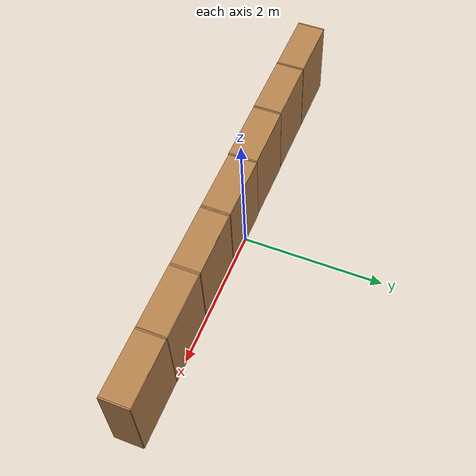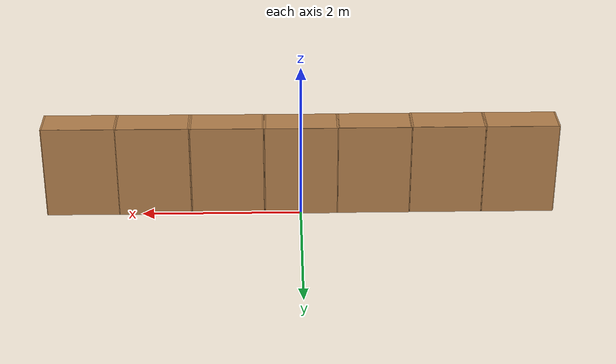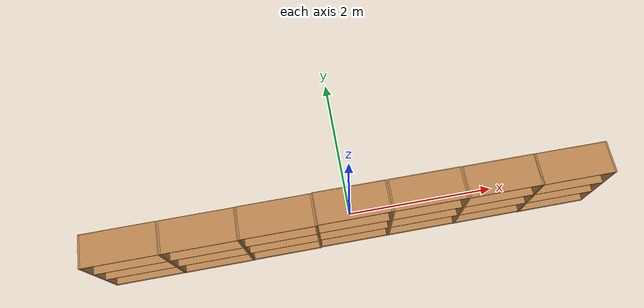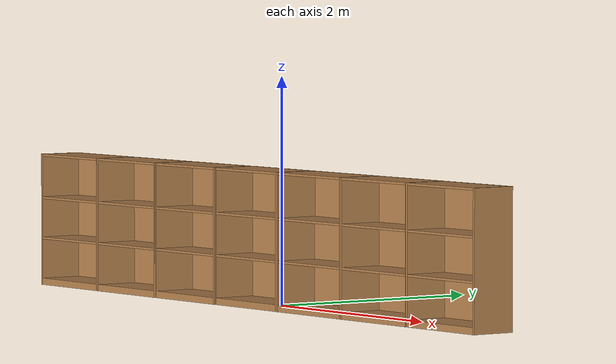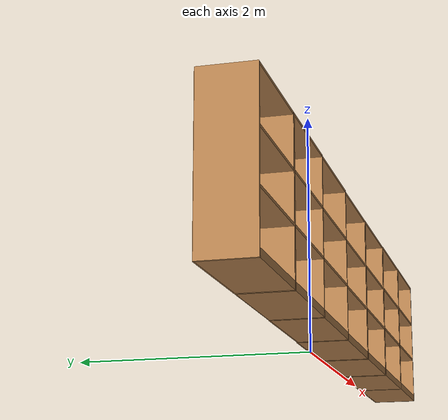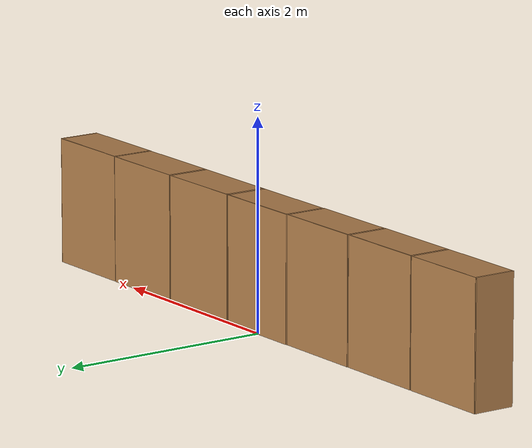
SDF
<?xml version='1.0'?>
<sdf version='1.7'>
  <model name='bookshelfs'>
    <model name='bookshelf_0'>
      <static>1</static>
      <link name='link'>
        <inertial>
          <mass>1</mass>
        </inertial>
        <collision name='back'>
          <pose>0 0.005 0.6 0 -0 0</pose>
          <geometry>
            <box>
              <size>0.9 0.01 1.2</size>
            </box>
          </geometry>
        </collision>
        <visual name='visual1'>
          <pose>0 0.005 0.6 0 -0 0</pose>
          <geometry>
            <box>
              <size>0.9 0.01 1.2</size>
            </box>
          </geometry>
          <material>
            <script>
              <uri>file://media/materials/scripts/gazebo.material</uri>
              <name>Gazebo/Wood</name>
            </script>
          </material>
        </visual>
        <collision name='left_side'>
          <pose>0.45 -0.195 0.6 0 -0 0</pose>
          <geometry>
            <box>
              <size>0.02 0.4 1.2</size>
            </box>
          </geometry>
        </collision>
        <visual name='visual2'>
          <pose>0.45 -0.195 0.6 0 -0 0</pose>
          <geometry>
            <box>
              <size>0.02 0.4 1.2</size>
            </box>
          </geometry>
          <material>
            <script>
              <uri>file://media/materials/scripts/gazebo.material</uri>
              <name>Gazebo/Wood</name>
            </script>
          </material>
        </visual>
        <collision name='right_side'>
          <pose>-0.45 -0.195 0.6 0 -0 0</pose>
          <geometry>
            <box>
              <size>0.02 0.4 1.2</size>
            </box>
          </geometry>
        </collision>
        <visual name='visual3'>
          <pose>-0.45 -0.195 0.6 0 -0 0</pose>
          <geometry>
            <box>
              <size>0.02 0.4 1.2</size>
            </box>
          </geometry>
          <material>
            <script>
              <uri>file://media/materials/scripts/gazebo.material</uri>
              <name>Gazebo/Wood</name>
            </script>
          </material>
        </visual>
        <collision name='bottom'>
          <pose>0 -0.195 0.03 0 -0 0</pose>
          <geometry>
            <box>
              <size>0.88 0.4 0.06</size>
            </box>
          </geometry>
        </collision>
        <visual name='visual4'>
          <pose>0 -0.195 0.03 0 -0 0</pose>
          <geometry>
            <box>
              <size>0.88 0.4 0.06</size>
            </box>
          </geometry>
          <material>
            <script>
              <uri>file://media/materials/scripts/gazebo.material</uri>
              <name>Gazebo/Wood</name>
            </script>
          </material>
        </visual>
        <collision name='top'>
          <pose>0 -0.195 1.19 0 -0 0</pose>
          <geometry>
            <box>
              <size>0.88 0.4 0.02</size>
            </box>
          </geometry>
        </collision>
        <visual name='visual5'>
          <pose>0 -0.195 1.19 0 -0 0</pose>
          <geometry>
            <box>
              <size>0.88 0.4 0.02</size>
            </box>
          </geometry>
          <material>
            <script>
              <uri>file://media/materials/scripts/gazebo.material</uri>
              <name>Gazebo/Wood</name>
            </script>
          </material>
        </visual>
        <collision name='low_shelf'>
          <pose>0 -0.195 0.43 0 -0 0</pose>
          <geometry>
            <box>
              <size>0.88 0.4 0.02</size>
            </box>
          </geometry>
        </collision>
        <visual name='visual6'>
          <pose>0 -0.195 0.43 0 -0 0</pose>
          <geometry>
            <box>
              <size>0.88 0.4 0.02</size>
            </box>
          </geometry>
          <material>
            <script>
              <uri>file://media/materials/scripts/gazebo.material</uri>
              <name>Gazebo/Wood</name>
            </script>
          </material>
        </visual>
        <collision name='high_shelf'>
          <pose>0 -0.195 0.8 0 -0 0</pose>
          <geometry>
            <box>
              <size>0.88 0.4 0.02</size>
            </box>
          </geometry>
        </collision>
        <visual name='visual7'>
          <pose>0 -0.195 0.8 0 -0 0</pose>
          <geometry>
            <box>
              <size>0.88 0.4 0.02</size>
            </box>
          </geometry>
          <material>
            <script>
              <uri>file://media/materials/scripts/gazebo.material</uri>
              <name>Gazebo/Wood</name>
            </script>
          </material>
        </visual>
      </link>
      <pose>-0.005007 0.005286 0 0 -0 0</pose>
    </model>
    <model name='bookshelf_1'>
      <static>1</static>
      <link name='link'>
        <inertial>
          <mass>1</mass>
        </inertial>
        <collision name='back'>
          <pose>0 0.005 0.6 0 -0 0</pose>
          <geometry>
            <box>
              <size>0.9 0.01 1.2</size>
            </box>
          </geometry>
        </collision>
        <visual name='visual1'>
          <pose>0 0.005 0.6 0 -0 0</pose>
          <geometry>
            <box>
              <size>0.9 0.01 1.2</size>
            </box>
          </geometry>
          <material>
            <script>
              <uri>file://media/materials/scripts/gazebo.material</uri>
              <name>Gazebo/Wood</name>
            </script>
          </material>
        </visual>
        <collision name='left_side'>
          <pose>0.45 -0.195 0.6 0 -0 0</pose>
          <geometry>
            <box>
              <size>0.02 0.4 1.2</size>
            </box>
          </geometry>
        </collision>
        <visual name='visual2'>
          <pose>0.45 -0.195 0.6 0 -0 0</pose>
          <geometry>
            <box>
              <size>0.02 0.4 1.2</size>
            </box>
          </geometry>
          <material>
            <script>
              <uri>file://media/materials/scripts/gazebo.material</uri>
              <name>Gazebo/Wood</name>
            </script>
          </material>
        </visual>
        <collision name='right_side'>
          <pose>-0.45 -0.195 0.6 0 -0 0</pose>
          <geometry>
            <box>
              <size>0.02 0.4 1.2</size>
            </box>
          </geometry>
        </collision>
        <visual name='visual3'>
          <pose>-0.45 -0.195 0.6 0 -0 0</pose>
          <geometry>
            <box>
              <size>0.02 0.4 1.2</size>
            </box>
          </geometry>
          <material>
            <script>
              <uri>file://media/materials/scripts/gazebo.material</uri>
              <name>Gazebo/Wood</name>
            </script>
          </material>
        </visual>
        <collision name='bottom'>
          <pose>0 -0.195 0.03 0 -0 0</pose>
          <geometry>
            <box>
              <size>0.88 0.4 0.06</size>
            </box>
          </geometry>
        </collision>
        <visual name='visual4'>
          <pose>0 -0.195 0.03 0 -0 0</pose>
          <geometry>
            <box>
              <size>0.88 0.4 0.06</size>
            </box>
          </geometry>
          <material>
            <script>
              <uri>file://media/materials/scripts/gazebo.material</uri>
              <name>Gazebo/Wood</name>
            </script>
          </material>
        </visual>
        <collision name='top'>
          <pose>0 -0.195 1.19 0 -0 0</pose>
          <geometry>
            <box>
              <size>0.88 0.4 0.02</size>
            </box>
          </geometry>
        </collision>
        <visual name='visual5'>
          <pose>0 -0.195 1.19 0 -0 0</pose>
          <geometry>
            <box>
              <size>0.88 0.4 0.02</size>
            </box>
          </geometry>
          <material>
            <script>
              <uri>file://media/materials/scripts/gazebo.material</uri>
              <name>Gazebo/Wood</name>
            </script>
          </material>
        </visual>
        <collision name='low_shelf'>
          <pose>0 -0.195 0.43 0 -0 0</pose>
          <geometry>
            <box>
              <size>0.88 0.4 0.02</size>
            </box>
          </geometry>
        </collision>
        <visual name='visual6'>
          <pose>0 -0.195 0.43 0 -0 0</pose>
          <geometry>
            <box>
              <size>0.88 0.4 0.02</size>
            </box>
          </geometry>
          <material>
            <script>
              <uri>file://media/materials/scripts/gazebo.material</uri>
              <name>Gazebo/Wood</name>
            </script>
          </material>
        </visual>
        <collision name='high_shelf'>
          <pose>0 -0.195 0.8 0 -0 0</pose>
          <geometry>
            <box>
              <size>0.88 0.4 0.02</size>
            </box>
          </geometry>
        </collision>
        <visual name='visual7'>
          <pose>0 -0.195 0.8 0 -0 0</pose>
          <geometry>
            <box>
              <size>0.88 0.4 0.02</size>
            </box>
          </geometry>
          <material>
            <script>
              <uri>file://media/materials/scripts/gazebo.material</uri>
              <name>Gazebo/Wood</name>
            </script>
          </material>
        </visual>
      </link>
      <pose>0.916009 0.004223 0 0 -0 0</pose>
    </model>
    <model name='bookshelf_2'>
      <static>1</static>
      <link name='link'>
        <inertial>
          <mass>1</mass>
        </inertial>
        <collision name='back'>
          <pose>0 0.005 0.6 0 -0 0</pose>
          <geometry>
            <box>
              <size>0.9 0.01 1.2</size>
            </box>
          </geometry>
        </collision>
        <visual name='visual1'>
          <pose>0 0.005 0.6 0 -0 0</pose>
          <geometry>
            <box>
              <size>0.9 0.01 1.2</size>
            </box>
          </geometry>
          <material>
            <script>
              <uri>file://media/materials/scripts/gazebo.material</uri>
              <name>Gazebo/Wood</name>
            </script>
          </material>
        </visual>
        <collision name='left_side'>
          <pose>0.45 -0.195 0.6 0 -0 0</pose>
          <geometry>
            <box>
              <size>0.02 0.4 1.2</size>
            </box>
          </geometry>
        </collision>
        <visual name='visual2'>
          <pose>0.45 -0.195 0.6 0 -0 0</pose>
          <geometry>
            <box>
              <size>0.02 0.4 1.2</size>
            </box>
          </geometry>
          <material>
            <script>
              <uri>file://media/materials/scripts/gazebo.material</uri>
              <name>Gazebo/Wood</name>
            </script>
          </material>
        </visual>
        <collision name='right_side'>
          <pose>-0.45 -0.195 0.6 0 -0 0</pose>
          <geometry>
            <box>
              <size>0.02 0.4 1.2</size>
            </box>
          </geometry>
        </collision>
        <visual name='visual3'>
          <pose>-0.45 -0.195 0.6 0 -0 0</pose>
          <geometry>
            <box>
              <size>0.02 0.4 1.2</size>
            </box>
          </geometry>
          <material>
            <script>
              <uri>file://media/materials/scripts/gazebo.material</uri>
              <name>Gazebo/Wood</name>
            </script>
          </material>
        </visual>
        <collision name='bottom'>
          <pose>0 -0.195 0.03 0 -0 0</pose>
          <geometry>
            <box>
              <size>0.88 0.4 0.06</size>
            </box>
          </geometry>
        </collision>
        <visual name='visual4'>
          <pose>0 -0.195 0.03 0 -0 0</pose>
          <geometry>
            <box>
              <size>0.88 0.4 0.06</size>
            </box>
          </geometry>
          <material>
            <script>
              <uri>file://media/materials/scripts/gazebo.material</uri>
              <name>Gazebo/Wood</name>
            </script>
          </material>
        </visual>
        <collision name='top'>
          <pose>0 -0.195 1.19 0 -0 0</pose>
          <geometry>
            <box>
              <size>0.88 0.4 0.02</size>
            </box>
          </geometry>
        </collision>
        <visual name='visual5'>
          <pose>0 -0.195 1.19 0 -0 0</pose>
          <geometry>
            <box>
              <size>0.88 0.4 0.02</size>
            </box>
          </geometry>
          <material>
            <script>
              <uri>file://media/materials/scripts/gazebo.material</uri>
              <name>Gazebo/Wood</name>
            </script>
          </material>
        </visual>
        <collision name='low_shelf'>
          <pose>0 -0.195 0.43 0 -0 0</pose>
          <geometry>
            <box>
              <size>0.88 0.4 0.02</size>
            </box>
          </geometry>
        </collision>
        <visual name='visual6'>
          <pose>0 -0.195 0.43 0 -0 0</pose>
          <geometry>
            <box>
              <size>0.88 0.4 0.02</size>
            </box>
          </geometry>
          <material>
            <script>
              <uri>file://media/materials/scripts/gazebo.material</uri>
              <name>Gazebo/Wood</name>
            </script>
          </material>
        </visual>
        <collision name='high_shelf'>
          <pose>0 -0.195 0.8 0 -0 0</pose>
          <geometry>
            <box>
              <size>0.88 0.4 0.02</size>
            </box>
          </geometry>
        </collision>
        <visual name='visual7'>
          <pose>0 -0.195 0.8 0 -0 0</pose>
          <geometry>
            <box>
              <size>0.88 0.4 0.02</size>
            </box>
          </geometry>
          <material>
            <script>
              <uri>file://media/materials/scripts/gazebo.material</uri>
              <name>Gazebo/Wood</name>
            </script>
          </material>
        </visual>
      </link>
      <pose>2.74482 -0.000925 0 0 -0 0</pose>
    </model>
    <model name='bookshelf_2_clone'>
      <static>1</static>
      <link name='link'>
        <inertial>
          <mass>1</mass>
        </inertial>
        <collision name='back'>
          <pose>0 0.005 0.6 0 -0 0</pose>
          <geometry>
            <box>
              <size>0.9 0.01 1.2</size>
            </box>
          </geometry>
        </collision>
        <visual name='visual1'>
          <pose>0 0.005 0.6 0 -0 0</pose>
          <geometry>
            <box>
              <size>0.9 0.01 1.2</size>
            </box>
          </geometry>
          <material>
            <script>
              <uri>file://media/materials/scripts/gazebo.material</uri>
              <name>Gazebo/Wood</name>
            </script>
          </material>
        </visual>
        <collision name='left_side'>
          <pose>0.45 -0.195 0.6 0 -0 0</pose>
          <geometry>
            <box>
              <size>0.02 0.4 1.2</size>
            </box>
          </geometry>
        </collision>
        <visual name='visual2'>
          <pose>0.45 -0.195 0.6 0 -0 0</pose>
          <geometry>
            <box>
              <size>0.02 0.4 1.2</size>
            </box>
          </geometry>
          <material>
            <script>
              <uri>file://media/materials/scripts/gazebo.material</uri>
              <name>Gazebo/Wood</name>
            </script>
          </material>
        </visual>
        <collision name='right_side'>
          <pose>-0.45 -0.195 0.6 0 -0 0</pose>
          <geometry>
            <box>
              <size>0.02 0.4 1.2</size>
            </box>
          </geometry>
        </collision>
        <visual name='visual3'>
          <pose>-0.45 -0.195 0.6 0 -0 0</pose>
          <geometry>
            <box>
              <size>0.02 0.4 1.2</size>
            </box>
          </geometry>
          <material>
            <script>
              <uri>file://media/materials/scripts/gazebo.material</uri>
              <name>Gazebo/Wood</name>
            </script>
          </material>
        </visual>
        <collision name='bottom'>
          <pose>0 -0.195 0.03 0 -0 0</pose>
          <geometry>
            <box>
              <size>0.88 0.4 0.06</size>
            </box>
          </geometry>
        </collision>
        <visual name='visual4'>
          <pose>0 -0.195 0.03 0 -0 0</pose>
          <geometry>
            <box>
              <size>0.88 0.4 0.06</size>
            </box>
          </geometry>
          <material>
            <script>
              <uri>file://media/materials/scripts/gazebo.material</uri>
              <name>Gazebo/Wood</name>
            </script>
          </material>
        </visual>
        <collision name='top'>
          <pose>0 -0.195 1.19 0 -0 0</pose>
          <geometry>
            <box>
              <size>0.88 0.4 0.02</size>
            </box>
          </geometry>
        </collision>
        <visual name='visual5'>
          <pose>0 -0.195 1.19 0 -0 0</pose>
          <geometry>
            <box>
              <size>0.88 0.4 0.02</size>
            </box>
          </geometry>
          <material>
            <script>
              <uri>file://media/materials/scripts/gazebo.material</uri>
              <name>Gazebo/Wood</name>
            </script>
          </material>
        </visual>
        <collision name='low_shelf'>
          <pose>0 -0.195 0.43 0 -0 0</pose>
          <geometry>
            <box>
              <size>0.88 0.4 0.02</size>
            </box>
          </geometry>
        </collision>
        <visual name='visual6'>
          <pose>0 -0.195 0.43 0 -0 0</pose>
          <geometry>
            <box>
              <size>0.88 0.4 0.02</size>
            </box>
          </geometry>
          <material>
            <script>
              <uri>file://media/materials/scripts/gazebo.material</uri>
              <name>Gazebo/Wood</name>
            </script>
          </material>
        </visual>
        <collision name='high_shelf'>
          <pose>0 -0.195 0.8 0 -0 0</pose>
          <geometry>
            <box>
              <size>0.88 0.4 0.02</size>
            </box>
          </geometry>
        </collision>
        <visual name='visual7'>
          <pose>0 -0.195 0.8 0 -0 0</pose>
          <geometry>
            <box>
              <size>0.88 0.4 0.02</size>
            </box>
          </geometry>
          <material>
            <script>
              <uri>file://media/materials/scripts/gazebo.material</uri>
              <name>Gazebo/Wood</name>
            </script>
          </material>
        </visual>
      </link>
      <pose>1.83513 0.001994 0 0 -0 0</pose>
    </model>
    <model name='bookshelf_2_clone_0'>
      <static>1</static>
      <link name='link'>
        <inertial>
          <mass>1</mass>
        </inertial>
        <collision name='back'>
          <pose>0 0.005 0.6 0 -0 0</pose>
          <geometry>
            <box>
              <size>0.9 0.01 1.2</size>
            </box>
          </geometry>
        </collision>
        <visual name='visual1'>
          <pose>0 0.005 0.6 0 -0 0</pose>
          <geometry>
            <box>
              <size>0.9 0.01 1.2</size>
            </box>
          </geometry>
          <material>
            <script>
              <uri>file://media/materials/scripts/gazebo.material</uri>
              <name>Gazebo/Wood</name>
            </script>
          </material>
        </visual>
        <collision name='left_side'>
          <pose>0.45 -0.195 0.6 0 -0 0</pose>
          <geometry>
            <box>
              <size>0.02 0.4 1.2</size>
            </box>
          </geometry>
        </collision>
        <visual name='visual2'>
          <pose>0.45 -0.195 0.6 0 -0 0</pose>
          <geometry>
            <box>
              <size>0.02 0.4 1.2</size>
            </box>
          </geometry>
          <material>
            <script>
              <uri>file://media/materials/scripts/gazebo.material</uri>
              <name>Gazebo/Wood</name>
            </script>
          </material>
        </visual>
        <collision name='right_side'>
          <pose>-0.45 -0.195 0.6 0 -0 0</pose>
          <geometry>
            <box>
              <size>0.02 0.4 1.2</size>
            </box>
          </geometry>
        </collision>
        <visual name='visual3'>
          <pose>-0.45 -0.195 0.6 0 -0 0</pose>
          <geometry>
            <box>
              <size>0.02 0.4 1.2</size>
            </box>
          </geometry>
          <material>
            <script>
              <uri>file://media/materials/scripts/gazebo.material</uri>
              <name>Gazebo/Wood</name>
            </script>
          </material>
        </visual>
        <collision name='bottom'>
          <pose>0 -0.195 0.03 0 -0 0</pose>
          <geometry>
            <box>
              <size>0.88 0.4 0.06</size>
            </box>
          </geometry>
        </collision>
        <visual name='visual4'>
          <pose>0 -0.195 0.03 0 -0 0</pose>
          <geometry>
            <box>
              <size>0.88 0.4 0.06</size>
            </box>
          </geometry>
          <material>
            <script>
              <uri>file://media/materials/scripts/gazebo.material</uri>
              <name>Gazebo/Wood</name>
            </script>
          </material>
        </visual>
        <collision name='top'>
          <pose>0 -0.195 1.19 0 -0 0</pose>
          <geometry>
            <box>
              <size>0.88 0.4 0.02</size>
            </box>
          </geometry>
        </collision>
        <visual name='visual5'>
          <pose>0 -0.195 1.19 0 -0 0</pose>
          <geometry>
            <box>
              <size>0.88 0.4 0.02</size>
            </box>
          </geometry>
          <material>
            <script>
              <uri>file://media/materials/scripts/gazebo.material</uri>
              <name>Gazebo/Wood</name>
            </script>
          </material>
        </visual>
        <collision name='low_shelf'>
          <pose>0 -0.195 0.43 0 -0 0</pose>
          <geometry>
            <box>
              <size>0.88 0.4 0.02</size>
            </box>
          </geometry>
        </collision>
        <visual name='visual6'>
          <pose>0 -0.195 0.43 0 -0 0</pose>
          <geometry>
            <box>
              <size>0.88 0.4 0.02</size>
            </box>
          </geometry>
          <material>
            <script>
              <uri>file://media/materials/scripts/gazebo.material</uri>
              <name>Gazebo/Wood</name>
            </script>
          </material>
        </visual>
        <collision name='high_shelf'>
          <pose>0 -0.195 0.8 0 -0 0</pose>
          <geometry>
            <box>
              <size>0.88 0.4 0.02</size>
            </box>
          </geometry>
        </collision>
        <visual name='visual7'>
          <pose>0 -0.195 0.8 0 -0 0</pose>
          <geometry>
            <box>
              <size>0.88 0.4 0.02</size>
            </box>
          </geometry>
          <material>
            <script>
              <uri>file://media/materials/scripts/gazebo.material</uri>
              <name>Gazebo/Wood</name>
            </script>
          </material>
        </visual>
      </link>
      <pose>-0.917034 -0.001387 0 0 -0 0</pose>
    </model>
    <model name='bookshelf_2_clone_1'>
      <static>1</static>
      <link name='link'>
        <inertial>
          <mass>1</mass>
        </inertial>
        <collision name='back'>
          <pose>0 0.005 0.6 0 -0 0</pose>
          <geometry>
            <box>
              <size>0.9 0.01 1.2</size>
            </box>
          </geometry>
        </collision>
        <visual name='visual1'>
          <pose>0 0.005 0.6 0 -0 0</pose>
          <geometry>
            <box>
              <size>0.9 0.01 1.2</size>
            </box>
          </geometry>
          <material>
            <script>
              <uri>file://media/materials/scripts/gazebo.material</uri>
              <name>Gazebo/Wood</name>
            </script>
          </material>
        </visual>
        <collision name='left_side'>
          <pose>0.45 -0.195 0.6 0 -0 0</pose>
          <geometry>
            <box>
              <size>0.02 0.4 1.2</size>
            </box>
          </geometry>
        </collision>
        <visual name='visual2'>
          <pose>0.45 -0.195 0.6 0 -0 0</pose>
          <geometry>
            <box>
              <size>0.02 0.4 1.2</size>
            </box>
          </geometry>
          <material>
            <script>
              <uri>file://media/materials/scripts/gazebo.material</uri>
              <name>Gazebo/Wood</name>
            </script>
          </material>
        </visual>
        <collision name='right_side'>
          <pose>-0.45 -0.195 0.6 0 -0 0</pose>
          <geometry>
            <box>
              <size>0.02 0.4 1.2</size>
            </box>
          </geometry>
        </collision>
        <visual name='visual3'>
          <pose>-0.45 -0.195 0.6 0 -0 0</pose>
          <geometry>
            <box>
              <size>0.02 0.4 1.2</size>
            </box>
          </geometry>
          <material>
            <script>
              <uri>file://media/materials/scripts/gazebo.material</uri>
              <name>Gazebo/Wood</name>
            </script>
          </material>
        </visual>
        <collision name='bottom'>
          <pose>0 -0.195 0.03 0 -0 0</pose>
          <geometry>
            <box>
              <size>0.88 0.4 0.06</size>
            </box>
          </geometry>
        </collision>
        <visual name='visual4'>
          <pose>0 -0.195 0.03 0 -0 0</pose>
          <geometry>
            <box>
              <size>0.88 0.4 0.06</size>
            </box>
          </geometry>
          <material>
            <script>
              <uri>file://media/materials/scripts/gazebo.material</uri>
              <name>Gazebo/Wood</name>
            </script>
          </material>
        </visual>
        <collision name='top'>
          <pose>0 -0.195 1.19 0 -0 0</pose>
          <geometry>
            <box>
              <size>0.88 0.4 0.02</size>
            </box>
          </geometry>
        </collision>
        <visual name='visual5'>
          <pose>0 -0.195 1.19 0 -0 0</pose>
          <geometry>
            <box>
              <size>0.88 0.4 0.02</size>
            </box>
          </geometry>
          <material>
            <script>
              <uri>file://media/materials/scripts/gazebo.material</uri>
              <name>Gazebo/Wood</name>
            </script>
          </material>
        </visual>
        <collision name='low_shelf'>
          <pose>0 -0.195 0.43 0 -0 0</pose>
          <geometry>
            <box>
              <size>0.88 0.4 0.02</size>
            </box>
          </geometry>
        </collision>
        <visual name='visual6'>
          <pose>0 -0.195 0.43 0 -0 0</pose>
          <geometry>
            <box>
              <size>0.88 0.4 0.02</size>
            </box>
          </geometry>
          <material>
            <script>
              <uri>file://media/materials/scripts/gazebo.material</uri>
              <name>Gazebo/Wood</name>
            </script>
          </material>
        </visual>
        <collision name='high_shelf'>
          <pose>0 -0.195 0.8 0 -0 0</pose>
          <geometry>
            <box>
              <size>0.88 0.4 0.02</size>
            </box>
          </geometry>
        </collision>
        <visual name='visual7'>
          <pose>0 -0.195 0.8 0 -0 0</pose>
          <geometry>
            <box>
              <size>0.88 0.4 0.02</size>
            </box>
          </geometry>
          <material>
            <script>
              <uri>file://media/materials/scripts/gazebo.material</uri>
              <name>Gazebo/Wood</name>
            </script>
          </material>
        </visual>
      </link>
      <pose>-1.83019 -0.004829 0 0 -0 0</pose>
    </model>
    <model name='bookshelf_2_clone_2'>
      <static>1</static>
      <link name='link'>
        <inertial>
          <mass>1</mass>
        </inertial>
        <collision name='back'>
          <pose>0 0.005 0.6 0 -0 0</pose>
          <geometry>
            <box>
              <size>0.9 0.01 1.2</size>
            </box>
          </geometry>
        </collision>
        <visual name='visual1'>
          <pose>0 0.005 0.6 0 -0 0</pose>
          <geometry>
            <box>
              <size>0.9 0.01 1.2</size>
            </box>
          </geometry>
          <material>
            <script>
              <uri>file://media/materials/scripts/gazebo.material</uri>
              <name>Gazebo/Wood</name>
            </script>
          </material>
        </visual>
        <collision name='left_side'>
          <pose>0.45 -0.195 0.6 0 -0 0</pose>
          <geometry>
            <box>
              <size>0.02 0.4 1.2</size>
            </box>
          </geometry>
        </collision>
        <visual name='visual2'>
          <pose>0.45 -0.195 0.6 0 -0 0</pose>
          <geometry>
            <box>
              <size>0.02 0.4 1.2</size>
            </box>
          </geometry>
          <material>
            <script>
              <uri>file://media/materials/scripts/gazebo.material</uri>
              <name>Gazebo/Wood</name>
            </script>
          </material>
        </visual>
        <collision name='right_side'>
          <pose>-0.45 -0.195 0.6 0 -0 0</pose>
          <geometry>
            <box>
              <size>0.02 0.4 1.2</size>
            </box>
          </geometry>
        </collision>
        <visual name='visual3'>
          <pose>-0.45 -0.195 0.6 0 -0 0</pose>
          <geometry>
            <box>
              <size>0.02 0.4 1.2</size>
            </box>
          </geometry>
          <material>
            <script>
              <uri>file://media/materials/scripts/gazebo.material</uri>
              <name>Gazebo/Wood</name>
            </script>
          </material>
        </visual>
        <collision name='bottom'>
          <pose>0 -0.195 0.03 0 -0 0</pose>
          <geometry>
            <box>
              <size>0.88 0.4 0.06</size>
            </box>
          </geometry>
        </collision>
        <visual name='visual4'>
          <pose>0 -0.195 0.03 0 -0 0</pose>
          <geometry>
            <box>
              <size>0.88 0.4 0.06</size>
            </box>
          </geometry>
          <material>
            <script>
              <uri>file://media/materials/scripts/gazebo.material</uri>
              <name>Gazebo/Wood</name>
            </script>
          </material>
        </visual>
        <collision name='top'>
          <pose>0 -0.195 1.19 0 -0 0</pose>
          <geometry>
            <box>
              <size>0.88 0.4 0.02</size>
            </box>
          </geometry>
        </collision>
        <visual name='visual5'>
          <pose>0 -0.195 1.19 0 -0 0</pose>
          <geometry>
            <box>
              <size>0.88 0.4 0.02</size>
            </box>
          </geometry>
          <material>
            <script>
              <uri>file://media/materials/scripts/gazebo.material</uri>
              <name>Gazebo/Wood</name>
            </script>
          </material>
        </visual>
        <collision name='low_shelf'>
          <pose>0 -0.195 0.43 0 -0 0</pose>
          <geometry>
            <box>
              <size>0.88 0.4 0.02</size>
            </box>
          </geometry>
        </collision>
        <visual name='visual6'>
          <pose>0 -0.195 0.43 0 -0 0</pose>
          <geometry>
            <box>
              <size>0.88 0.4 0.02</size>
            </box>
          </geometry>
          <material>
            <script>
              <uri>file://media/materials/scripts/gazebo.material</uri>
              <name>Gazebo/Wood</name>
            </script>
          </material>
        </visual>
        <collision name='high_shelf'>
          <pose>0 -0.195 0.8 0 -0 0</pose>
          <geometry>
            <box>
              <size>0.88 0.4 0.02</size>
            </box>
          </geometry>
        </collision>
        <visual name='visual7'>
          <pose>0 -0.195 0.8 0 -0 0</pose>
          <geometry>
            <box>
              <size>0.88 0.4 0.02</size>
            </box>
          </geometry>
          <material>
            <script>
              <uri>file://media/materials/scripts/gazebo.material</uri>
              <name>Gazebo/Wood</name>
            </script>
          </material>
        </visual>
      </link>
      <pose>-2.74373 -0.004363 0 0 -0 0</pose>
    </model>
    <static>0</static>
    <allow_auto_disable>1</allow_auto_disable>
  </model>
</sdf>
